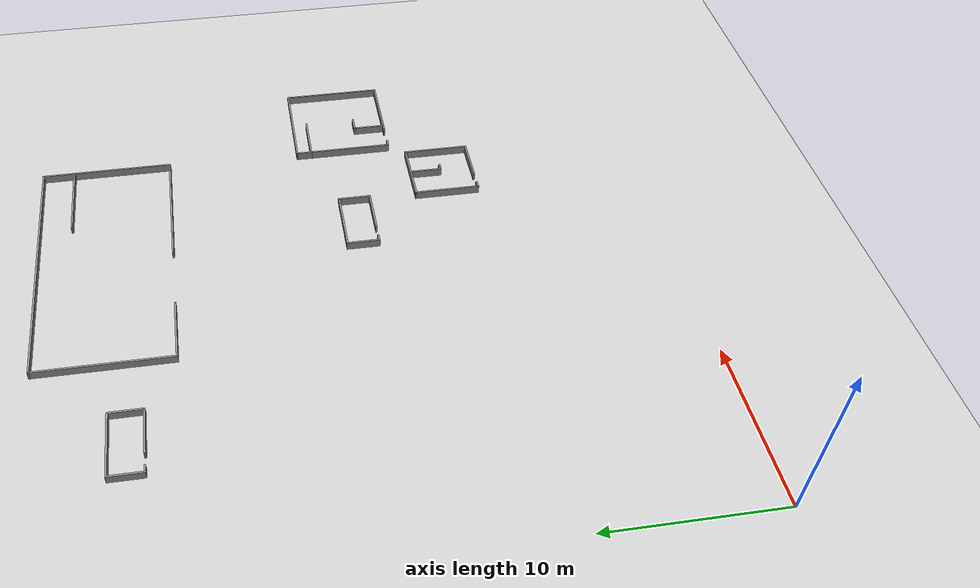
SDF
<sdf version="1.6">
 <world name="default">
  <model name="ground_plane">
   <static>1</static>
   <link name="link">
    <collision name="collision">
     <geometry><plane><normal>0 0 1</normal><size>80 80</size></plane></geometry>
     <surface>
      <contact><collide_bitmask>65535</collide_bitmask></contact>
      <friction><ode><mu>100</mu><mu2>50</mu2></ode></friction>
     </surface>
     <max_contacts>15</max_contacts>
    </collision>
    <visual name="visual">
     <cast_shadows>0</cast_shadows>
     <geometry><plane><normal>0 0 1</normal><size>80 80</size></plane></geometry>
     <material>
      <script><uri>file://media/materials/scripts/gazebo.material</uri><name>Gazebo/Grey</name></script>
     </material>
    </visual>
   </link>
  </model>
  <model name="shape2">
   <pose>21.5 33.2 0 0 -0 0</pose>
   <link name="Wall_0">
    <collision name="Wall_0_Collision">
     <geometry><box><size>7.94986 0.1 0.5</size></box></geometry>
     <pose>0 0 0.25 0 -0 0</pose>
    </collision>
    <visual name="Wall_0_Visual">
     <pose>0 0 0.25 0 -0 0</pose>
     <geometry><box><size>7.94986 0.1 0.5</size></box></geometry>
     <material>
      <script><uri>file://media/materials/scripts/gazebo.material</uri><name>Gazebo/Grey</name></script>
      <ambient>1 1 1 1</ambient>
     </material>
     <meta><layer>0</layer></meta>
    </visual>
    <pose>-7.95004 0 0 0 -0 -1.5708</pose>
   </link>
   <link name="Wall_1">
    <collision name="Wall_1_Collision">
     <geometry><box><size>4 0.1 0.5</size></box></geometry>
     <pose>0 0 0.25 0 -0 0</pose>
    </collision>
    <visual name="Wall_1_Visual">
     <pose>0 0 0.25 0 -0 0</pose>
     <geometry><box><size>4 0.1 0.5</size></box></geometry>
     <material>
      <script><uri>file://media/materials/scripts/gazebo.material</uri><name>Gazebo/Grey</name></script>
      <ambient>1 1 1 1</ambient>
     </material>
     <meta><layer>0</layer></meta>
    </visual>
    <pose>-6.00004 -3.925 0 0 -0 0</pose>
   </link>
   <link name="Wall_3">
    <collision name="Wall_3_Collision">
     <geometry><box><size>16 0.1 0.5</size></box></geometry>
     <pose>0 0 0.25 0 -0 0</pose>
    </collision>
    <visual name="Wall_3_Visual">
     <pose>0 0 0.25 0 -0 0</pose>
     <geometry><box><size>16 0.1 0.5</size></box></geometry>
     <material>
      <script><uri>file://media/materials/scripts/gazebo.material</uri><name>Gazebo/Grey</name></script>
      <ambient>1 1 1 1</ambient>
     </material>
     <meta><layer>0</layer></meta>
    </visual>
    <pose>-4e-05 3.925 0 0 -0 0</pose>
   </link>
   <link name="Wall_4">
    <collision name="Wall_4_Collision">
     <geometry><box><size>2 0.1 0.5</size></box></geometry>
     <pose>0 0 0.25 0 -0 0</pose>
    </collision>
    <visual name="Wall_4_Visual">
     <pose>0 0 0.25 0 -0 0</pose>
     <geometry><box><size>2 0.1 0.5</size></box></geometry>
     <material>
      <script><uri>file://media/materials/scripts/gazebo.material</uri><name>Gazebo/Grey</name></script>
      <ambient>1 1 1 1</ambient>
     </material>
     <meta><layer>0</layer></meta>
    </visual>
    <pose>7.94996 2.975 0 0 -0 -1.5708</pose>
   </link>
   <link name="Wall_5">
    <collision name="Wall_5_Collision">
     <geometry><box><size>5 0.1 0.5</size></box></geometry>
     <pose>0 0 0.25 0 -0 0</pose>
    </collision>
    <visual name="Wall_5_Visual">
     <pose>0 0 0.25 0 -0 0</pose>
     <geometry><box><size>5 0.1 0.5</size></box></geometry>
     <material>
      <script><uri>file://media/materials/scripts/gazebo.material</uri><name>Gazebo/Grey</name></script>
      <ambient>1 1 1 1</ambient>
     </material>
     <meta><layer>0</layer></meta>
    </visual>
    <pose>5.49996 2.025 0 0 -0 3.14159</pose>
   </link>
   <link name="Wall_7">
    <collision name="Wall_7_Collision">
     <geometry><box><size>6.05 0.1 0.5</size></box></geometry>
     <pose>0 0 0.25 0 -0 0</pose>
    </collision>
    <visual name="Wall_7_Visual">
     <pose>0 0 0.25 0 -0 0</pose>
     <geometry><box><size>6.05 0.1 0.5</size></box></geometry>
     <material>
      <script><uri>file://media/materials/scripts/gazebo.material</uri><name>Gazebo/Grey</name></script>
      <ambient>1 1 1 1</ambient>
     </material>
     <meta><layer>0</layer></meta>
    </visual>
    <pose>7.94996 -0.95 0 0 -0 -1.5708</pose>
   </link>
   <link name="Wall_8">
    <collision name="Wall_8_Collision">
     <geometry><box><size>8.00016 0.1 0.5</size></box></geometry>
     <pose>0 0 0.25 0 -0 0</pose>
    </collision>
    <visual name="Wall_8_Visual">
     <pose>0 0 0.25 0 -0 0</pose>
     <geometry><box><size>8.00016 0.1 0.5</size></box></geometry>
     <material>
      <script><uri>file://media/materials/scripts/gazebo.material</uri><name>Gazebo/Grey</name></script>
      <ambient>1 1 1 1</ambient>
     </material>
     <meta><layer>0</layer></meta>
    </visual>
    <pose>3.99996 -3.925 0 0 -0 3.14159</pose>
   </link>
   <static>1</static>
  </model>
  <model name="shape5">
   <pose>32.3 18.2 0 0 -0 0</pose>
   <link name="Wall_10">
    <collision name="Wall_10_Collision">
     <geometry><box><size>6 0.1 0.5</size></box></geometry>
     <pose>0 0 0.25 0 -0 0</pose>
    </collision>
    <visual name="Wall_10_Visual">
     <pose>0 0 0.25 0 -0 0</pose>
     <geometry><box><size>6 0.1 0.5</size></box></geometry>
     <material>
      <script><uri>file://media/materials/scripts/gazebo.material</uri><name>Gazebo/Grey</name></script>
      <ambient>1 1 1 1</ambient>
     </material>
     <meta><layer>0</layer></meta>
    </visual>
    <pose>-0 2.95 0 0 -0 0</pose>
   </link>
   <link name="Wall_11">
    <collision name="Wall_11_Collision">
     <geometry><box><size>6 0.1 0.5</size></box></geometry>
     <pose>0 0 0.25 0 -0 0</pose>
    </collision>
    <visual name="Wall_11_Visual">
     <pose>0 0 0.25 0 -0 0</pose>
     <geometry><box><size>6 0.1 0.5</size></box></geometry>
     <material>
      <script><uri>file://media/materials/scripts/gazebo.material</uri><name>Gazebo/Grey</name></script>
      <ambient>1 1 1 1</ambient>
     </material>
     <meta><layer>0</layer></meta>
    </visual>
    <pose>2.95 0 0 0 -0 -1.5708</pose>
   </link>
   <link name="Wall_12">
    <collision name="Wall_12_Collision">
     <geometry><box><size>4 0.1 0.5</size></box></geometry>
     <pose>0 0 0.25 0 -0 0</pose>
    </collision>
    <visual name="Wall_12_Visual">
     <pose>0 0 0.25 0 -0 0</pose>
     <geometry><box><size>4 0.1 0.5</size></box></geometry>
     <material>
      <script><uri>file://media/materials/scripts/gazebo.material</uri><name>Gazebo/Grey</name></script>
      <ambient>1 1 1 1</ambient>
     </material>
     <meta><layer>0</layer></meta>
    </visual>
    <pose>1 -2.95 0 0 -0 3.14159</pose>
   </link>
   <link name="Wall_13">
    <collision name="Wall_13_Collision">
     <geometry><box><size>2 0.1 0.5</size></box></geometry>
     <pose>0 0 0.25 0 -0 0</pose>
    </collision>
    <visual name="Wall_13_Visual">
     <pose>0 0 0.25 0 -0 0</pose>
     <geometry><box><size>2 0.1 0.5</size></box></geometry>
     <material>
      <script><uri>file://media/materials/scripts/gazebo.material</uri><name>Gazebo/Grey</name></script>
      <ambient>1 1 1 1</ambient>
     </material>
     <meta><layer>0</layer></meta>
    </visual>
    <pose>-0.95 -2 0 0 -0 1.5708</pose>
   </link>
   <link name="Wall_14">
    <collision name="Wall_14_Collision">
     <geometry><box><size>1.00029 0.1 0.5</size></box></geometry>
     <pose>0 0 0.25 0 -0 0</pose>
    </collision>
    <visual name="Wall_14_Visual">
     <pose>0 0 0.25 0 -0 0</pose>
     <geometry><box><size>1.00029 0.1 0.5</size></box></geometry>
     <material>
      <script><uri>file://media/materials/scripts/gazebo.material</uri><name>Gazebo/Grey</name></script>
      <ambient>1 1 1 1</ambient>
     </material>
     <meta><layer>0</layer></meta>
    </visual>
    <pose>-0.5 -1.05 0 0 -0 0</pose>
   </link>
   <link name="Wall_18">
    <collision name="Wall_18_Collision">
     <geometry><box><size>1 0.1 0.5</size></box></geometry>
     <pose>0 0 0.25 0 -0 0</pose>
    </collision>
    <visual name="Wall_18_Visual">
     <pose>0 0 0.25 0 -0 0</pose>
     <geometry><box><size>1 0.1 0.5</size></box></geometry>
     <material>
      <script><uri>file://media/materials/scripts/gazebo.material</uri><name>Gazebo/Grey</name></script>
      <ambient>1 1 1 1</ambient>
     </material>
     <meta><layer>0</layer></meta>
    </visual>
    <pose>-2.95 2.5 0 0 -0 -1.5708</pose>
   </link>
   <link name="Wall_19">
    <collision name="Wall_19_Collision">
     <geometry><box><size>3 0.1 0.5</size></box></geometry>
     <pose>0 0 0.25 0 -0 0</pose>
    </collision>
    <visual name="Wall_19_Visual">
     <pose>0 0 0.25 0 -0 0</pose>
     <geometry><box><size>3 0.1 0.5</size></box></geometry>
     <material>
      <script><uri>file://media/materials/scripts/gazebo.material</uri><name>Gazebo/Grey</name></script>
      <ambient>1 1 1 1</ambient>
     </material>
     <meta><layer>0</layer></meta>
    </visual>
    <pose>-1.5 2.05 0 0 -0 0</pose>
   </link>
   <link name="Wall_21">
    <collision name="Wall_21_Collision">
     <geometry><box><size>5.1 0.1 0.5</size></box></geometry>
     <pose>0 0 0.25 0 -0 0</pose>
    </collision>
    <visual name="Wall_21_Visual">
     <pose>0 0 0.25 0 -0 0</pose>
     <geometry><box><size>5.1 0.1 0.5</size></box></geometry>
     <material>
      <script><uri>file://media/materials/scripts/gazebo.material</uri><name>Gazebo/Grey</name></script>
      <ambient>1 1 1 1</ambient>
     </material>
     <meta><layer>0</layer></meta>
    </visual>
    <pose>-2.95 -0.45 0 0 -0 -1.5708</pose>
   </link>
   <link name="Wall_22">
    <collision name="Wall_22_Collision">
     <geometry><box><size>0.5 0.1 0.5</size></box></geometry>
     <pose>0 0 0.25 0 -0 0</pose>
    </collision>
    <visual name="Wall_22_Visual">
     <pose>0 0 0.25 0 -0 0</pose>
     <geometry><box><size>0.5 0.1 0.5</size></box></geometry>
     <material>
      <script><uri>file://media/materials/scripts/gazebo.material</uri><name>Gazebo/Grey</name></script>
      <ambient>1 1 1 1</ambient>
     </material>
     <meta><layer>0</layer></meta>
    </visual>
    <pose>-2.75 -2.95 0 0 -0 0</pose>
   </link>
   <link name="Wall_24">
    <collision name="Wall_24_Collision">
     <geometry><box><size>0.5 0.1 0.5</size></box></geometry>
     <pose>0 0 0.25 0 -0 0</pose>
    </collision>
    <visual name="Wall_24_Visual">
     <pose>0 0 0.25 0 -0 0</pose>
     <geometry><box><size>0.5 0.1 0.5</size></box></geometry>
     <material>
      <script><uri>file://media/materials/scripts/gazebo.material</uri><name>Gazebo/Grey</name></script>
      <ambient>1 1 1 1</ambient>
     </material>
     <meta><layer>0</layer></meta>
    </visual>
    <pose>-1.15 -2.95 0 0 -0 3.14159</pose>
   </link>
   <static>1</static>
  </model>
  <model name="shape2">
   <pose>8.3 32 0 0 -0 0</pose>
   <link name="Wall_0">
    <collision name="Wall_0_Collision">
     <geometry><box><size>3.98685 0.1 0.5</size></box></geometry>
     <pose>0 0 0.25 0 -0 0</pose>
    </collision>
    <visual name="Wall_0_Visual">
     <pose>0 0 0.25 0 -0 0</pose>
     <geometry><box><size>3.98685 0.1 0.5</size></box></geometry>
     <material>
      <script><uri>file://media/materials/scripts/gazebo.material</uri><name>Gazebo/Grey</name></script>
      <ambient>1 1 1 1</ambient>
     </material>
     <meta><layer>0</layer></meta>
    </visual>
    <pose>0.003288 0.95 0 0 -0 0</pose>
   </link>
   <link name="Wall_1">
    <collision name="Wall_1_Collision">
     <geometry><box><size>2 0.1 0.5</size></box></geometry>
     <pose>0 0 0.25 0 -0 0</pose>
    </collision>
    <visual name="Wall_1_Visual">
     <pose>0 0 0.25 0 -0 0</pose>
     <geometry><box><size>2 0.1 0.5</size></box></geometry>
     <material>
      <script><uri>file://media/materials/scripts/gazebo.material</uri><name>Gazebo/Grey</name></script>
      <ambient>1 1 1 1</ambient>
     </material>
     <meta><layer>0</layer></meta>
    </visual>
    <pose>1.94671 0 0 0 -0 -1.5708</pose>
   </link>
   <link name="Wall_2">
    <collision name="Wall_2_Collision">
     <geometry><box><size>2.8 0.1 0.5</size></box></geometry>
     <pose>0 0 0.25 0 -0 0</pose>
    </collision>
    <visual name="Wall_2_Visual">
     <pose>0 0 0.25 0 -0 0</pose>
     <geometry><box><size>2.8 0.1 0.5</size></box></geometry>
     <material>
      <script><uri>file://media/materials/scripts/gazebo.material</uri><name>Gazebo/Grey</name></script>
      <ambient>1 1 1 1</ambient>
     </material>
     <meta><layer>0</layer></meta>
    </visual>
    <pose>0.596712 -0.95 0 0 -0 3.14159</pose>
   </link>
   <link name="Wall_4">
    <collision name="Wall_4_Collision">
     <geometry><box><size>2 0.1 0.5</size></box></geometry>
     <pose>0 0 0.25 0 -0 0</pose>
    </collision>
    <visual name="Wall_4_Visual">
     <pose>0 0 0.25 0 -0 0</pose>
     <geometry><box><size>2 0.1 0.5</size></box></geometry>
     <material>
      <script><uri>file://media/materials/scripts/gazebo.material</uri><name>Gazebo/Grey</name></script>
      <ambient>1 1 1 1</ambient>
     </material>
     <meta><layer>0</layer></meta>
    </visual>
    <pose>-1.94671 0 0 0 -0 -1.5708</pose>
   </link>
   <link name="Wall_5">
    <collision name="Wall_5_Collision">
     <geometry><box><size>0.5 0.1 0.5</size></box></geometry>
     <pose>0 0 0.25 0 -0 0</pose>
    </collision>
    <visual name="Wall_5_Visual">
     <pose>0 0 0.25 0 -0 0</pose>
     <geometry><box><size>0.5 0.1 0.5</size></box></geometry>
     <material>
      <script><uri>file://media/materials/scripts/gazebo.material</uri><name>Gazebo/Grey</name></script>
      <ambient>1 1 1 1</ambient>
     </material>
     <meta><layer>0</layer></meta>
    </visual>
    <pose>-1.74671 -0.95 0 0 -0 0</pose>
   </link>
   <static>1</static>
  </model>
  <model name="shape2">
   <pose>22.7 18.1 0 0 -0 0</pose>
   <link name="Wall_0">
    <collision name="Wall_0_Collision">
     <geometry><box><size>3.98685 0.1 0.5</size></box></geometry>
     <pose>0 0 0.25 0 -0 0</pose>
    </collision>
    <visual name="Wall_0_Visual">
     <pose>0 0 0.25 0 -0 0</pose>
     <geometry><box><size>3.98685 0.1 0.5</size></box></geometry>
     <material>
      <script><uri>file://media/materials/scripts/gazebo.material</uri><name>Gazebo/Grey</name></script>
      <ambient>1 1 1 1</ambient>
     </material>
     <meta><layer>0</layer></meta>
    </visual>
    <pose>0.003288 0.95 0 0 -0 0</pose>
   </link>
   <link name="Wall_1">
    <collision name="Wall_1_Collision">
     <geometry><box><size>2 0.1 0.5</size></box></geometry>
     <pose>0 0 0.25 0 -0 0</pose>
    </collision>
    <visual name="Wall_1_Visual">
     <pose>0 0 0.25 0 -0 0</pose>
     <geometry><box><size>2 0.1 0.5</size></box></geometry>
     <material>
      <script><uri>file://media/materials/scripts/gazebo.material</uri><name>Gazebo/Grey</name></script>
      <ambient>1 1 1 1</ambient>
     </material>
     <meta><layer>0</layer></meta>
    </visual>
    <pose>1.94671 0 0 0 -0 -1.5708</pose>
   </link>
   <link name="Wall_2">
    <collision name="Wall_2_Collision">
     <geometry><box><size>2.8 0.1 0.5</size></box></geometry>
     <pose>0 0 0.25 0 -0 0</pose>
    </collision>
    <visual name="Wall_2_Visual">
     <pose>0 0 0.25 0 -0 0</pose>
     <geometry><box><size>2.8 0.1 0.5</size></box></geometry>
     <material>
      <script><uri>file://media/materials/scripts/gazebo.material</uri><name>Gazebo/Grey</name></script>
      <ambient>1 1 1 1</ambient>
     </material>
     <meta><layer>0</layer></meta>
    </visual>
    <pose>0.596712 -0.95 0 0 -0 3.14159</pose>
   </link>
   <link name="Wall_4">
    <collision name="Wall_4_Collision">
     <geometry><box><size>2 0.1 0.5</size></box></geometry>
     <pose>0 0 0.25 0 -0 0</pose>
    </collision>
    <visual name="Wall_4_Visual">
     <pose>0 0 0.25 0 -0 0</pose>
     <geometry><box><size>2 0.1 0.5</size></box></geometry>
     <material>
      <script><uri>file://media/materials/scripts/gazebo.material</uri><name>Gazebo/Grey</name></script>
      <ambient>1 1 1 1</ambient>
     </material>
     <meta><layer>0</layer></meta>
    </visual>
    <pose>-1.94671 0 0 0 -0 -1.5708</pose>
   </link>
   <link name="Wall_5">
    <collision name="Wall_5_Collision">
     <geometry><box><size>0.5 0.1 0.5</size></box></geometry>
     <pose>0 0 0.25 0 -0 0</pose>
    </collision>
    <visual name="Wall_5_Visual">
     <pose>0 0 0.25 0 -0 0</pose>
     <geometry><box><size>0.5 0.1 0.5</size></box></geometry>
     <material>
      <script><uri>file://media/materials/scripts/gazebo.material</uri><name>Gazebo/Grey</name></script>
      <ambient>1 1 1 1</ambient>
     </material>
     <meta><layer>0</layer></meta>
    </visual>
    <pose>-1.74671 -0.95 0 0 -0 0</pose>
   </link>
   <static>1</static>
  </model>
  <model name="shape4">
   <pose>26.5 12.3 0 0 -0 0</pose>
   <link name="Wall_0">
    <collision name="Wall_0_Collision">
     <geometry><box><size>4 0.1 0.5</size></box></geometry>
     <pose>0 0 0.25 0 -0 0</pose>
    </collision>
    <visual name="Wall_0_Visual">
     <pose>0 0 0.25 0 -0 0</pose>
     <geometry><box><size>4 0.1 0.5</size></box></geometry>
     <material>
      <script><uri>file://media/materials/scripts/gazebo.material</uri><name>Gazebo/Grey</name></script>
      <ambient>1 1 1 1</ambient>
     </material>
     <meta><layer>0</layer></meta>
    </visual>
    <pose>-1.95 0 0 0 -0 -1.5708</pose>
   </link>
   <link name="Wall_1">
    <collision name="Wall_1_Collision">
     <geometry><box><size>0.5 0.1 0.5</size></box></geometry>
     <pose>0 0 0.25 0 -0 0</pose>
    </collision>
    <visual name="Wall_1_Visual">
     <pose>0 0 0.25 0 -0 0</pose>
     <geometry><box><size>0.5 0.1 0.5</size></box></geometry>
     <material>
      <script><uri>file://media/materials/scripts/gazebo.material</uri><name>Gazebo/Grey</name></script>
      <ambient>1 1 1 1</ambient>
     </material>
     <meta><layer>0</layer></meta>
    </visual>
    <pose>-1.75 -1.95 0 0 -0 0</pose>
   </link>
   <link name="Wall_3">
    <collision name="Wall_3_Collision">
     <geometry><box><size>4 0.1 0.5</size></box></geometry>
     <pose>0 0 0.25 0 -0 0</pose>
    </collision>
    <visual name="Wall_3_Visual">
     <pose>0 0 0.25 0 -0 0</pose>
     <geometry><box><size>4 0.1 0.5</size></box></geometry>
     <material>
      <script><uri>file://media/materials/scripts/gazebo.material</uri><name>Gazebo/Grey</name></script>
      <ambient>1 1 1 1</ambient>
     </material>
     <meta><layer>0</layer></meta>
    </visual>
    <pose>0 1.95 0 0 -0 0</pose>
   </link>
   <link name="Wall_4">
    <collision name="Wall_4_Collision">
     <geometry><box><size>4 0.1 0.5</size></box></geometry>
     <pose>0 0 0.25 0 -0 0</pose>
    </collision>
    <visual name="Wall_4_Visual">
     <pose>0 0 0.25 0 -0 0</pose>
     <geometry><box><size>4 0.1 0.5</size></box></geometry>
     <material>
      <script><uri>file://media/materials/scripts/gazebo.material</uri><name>Gazebo/Grey</name></script>
      <ambient>1 1 1 1</ambient>
     </material>
     <meta><layer>0</layer></meta>
    </visual>
    <pose>1.95 0 0 0 -0 -1.5708</pose>
   </link>
   <link name="Wall_5">
    <collision name="Wall_5_Collision">
     <geometry><box><size>2.8 0.1 0.5</size></box></geometry>
     <pose>0 0 0.25 0 -0 0</pose>
    </collision>
    <visual name="Wall_5_Visual">
     <pose>0 0 0.25 0 -0 0</pose>
     <geometry><box><size>2.8 0.1 0.5</size></box></geometry>
     <material>
      <script><uri>file://media/materials/scripts/gazebo.material</uri><name>Gazebo/Grey</name></script>
      <ambient>1 1 1 1</ambient>
     </material>
     <meta><layer>0</layer></meta>
    </visual>
    <pose>0.6 -1.95 0 0 -0 3.14159</pose>
   </link>
   <link name="Wall_7">
    <collision name="Wall_7_Collision">
     <geometry><box><size>2 0.1 0.5</size></box></geometry>
     <pose>0 0 0.25 0 -0 0</pose>
    </collision>
    <visual name="Wall_7_Visual">
     <pose>0 0 0.25 0 -0 0</pose>
     <geometry><box><size>2 0.1 0.5</size></box></geometry>
     <material>
      <script><uri>file://media/materials/scripts/gazebo.material</uri><name>Gazebo/Grey</name></script>
      <ambient>1 1 1 1</ambient>
     </material>
     <meta><layer>0</layer></meta>
    </visual>
    <pose>0.015 0.991 0 0 -0 -1.5708</pose>
   </link>
   <link name="Wall_8">
    <collision name="Wall_8_Collision">
     <geometry><box><size>0.5 0.1 0.5</size></box></geometry>
     <pose>0 0 0.25 0 -0 0</pose>
    </collision>
    <visual name="Wall_8_Visual">
     <pose>0 0 0.25 0 -0 0</pose>
     <geometry><box><size>0.5 0.1 0.5</size></box></geometry>
     <material>
      <script><uri>file://media/materials/scripts/gazebo.material</uri><name>Gazebo/Grey</name></script>
      <ambient>1 1 1 1</ambient>
     </material>
     <meta><layer>0</layer></meta>
    </visual>
    <pose>0.215 0.041 0 0 -0 0</pose>
   </link>
   <static>1</static>
  </model>
 </world>
</sdf>
